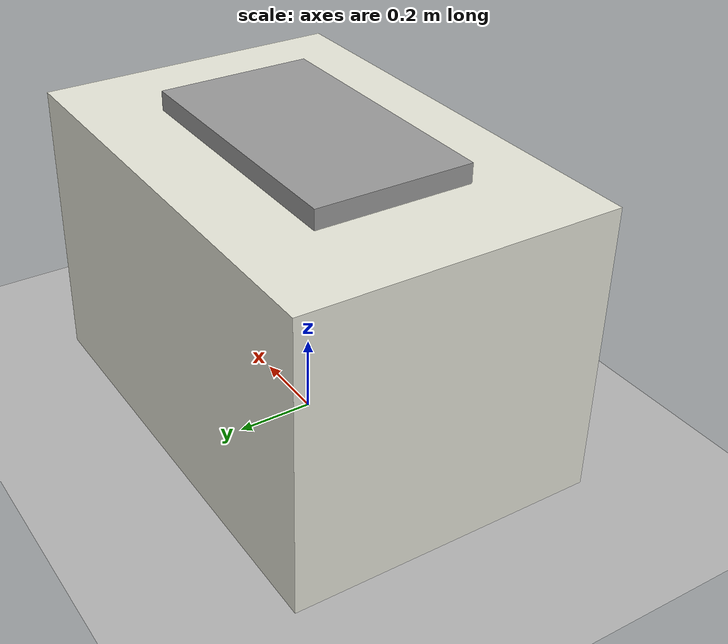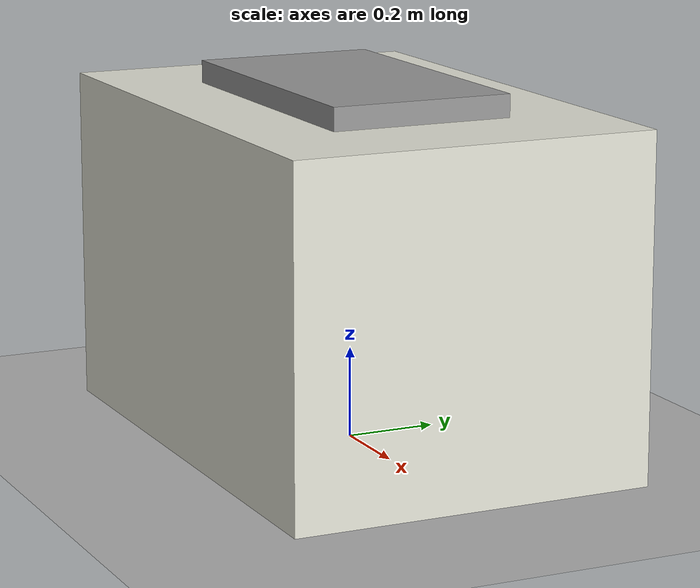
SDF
<?xml version="1.0" ?>
<sdf version="1.8">
  <world name="rebel_lab_world">

    <physics name="1ms" type="ignored">
      <max_step_size>0.001</max_step_size>
      <real_time_factor>1.0</real_time_factor>
    </physics>

    <plugin filename="gz-sim-physics-system" name="gz::sim::systems::Physics"/>
    <plugin filename="gz-sim-user-commands-system" name="gz::sim::systems::UserCommands"/>
    <plugin filename="gz-sim-scene-broadcaster-system" name="gz::sim::systems::SceneBroadcaster"/>

    <light type="directional" name="sun">
      <cast_shadows>true</cast_shadows>
      <pose>0 0 10 0 0 0</pose>
      <diffuse>0.8 0.8 0.8 1</diffuse>
      <specular>0.2 0.2 0.2 1</specular>
      <direction>-0.5 0.1 -0.9</direction>
    </light>

    <model name="ground_plane">
      <static>true</static>
      <link name="link">
        <collision name="collision">
          <geometry>
            <plane>
              <normal>0 0 1</normal>
              <size>100 100</size>
            </plane>
          </geometry>
        </collision>
        <visual name="visual">
          <geometry>
            <plane>
              <normal>0 0 1</normal>
              <size>100 100</size>
            </plane>
          </geometry>
          <material>
            <ambient>0.3 0.3 0.3 1</ambient>
            <diffuse>0.7 0.7 0.7 1</diffuse>
            <specular>0.7 0.7 0.7 1</specular>
          </material>
        </visual>
      </link>
    </model>

    <model name="lab_table">
      <static>true</static>
      <pose>0 0 0.375 0 0 0</pose>
      <link name="table_top">
        <collision name="collision">
          <geometry>
            <box>
              <size>1.2 0.8 0.75</size>
            </box>
          </geometry>
        </collision>
        <visual name="visual">
          <geometry>
            <box>
              <size>1.2 0.8 0.75</size>
            </box>
          </geometry>
          <material>
            <ambient>0.9 0.9 0.85 1</ambient>
            <diffuse>0.9 0.9 0.85 1</diffuse>
          </material>
        </visual>
      </link>
    </model>

    <model name="robot_base_plate">
      <static>true</static>
      <pose>0 0 0.775 0 0 0</pose>
      <link name="plate_link">
        <collision name="collision">
          <geometry>
            <box>
              <size>0.7 0.4 0.05</size>
            </box>
          </geometry>
        </collision>
        <visual name="visual">
          <geometry>
            <box>
              <size>0.7 0.4 0.05</size>
            </box>
          </geometry>
          <material>
            <ambient>0.5 0.5 0.5 1</ambient>
            <diffuse>0.6 0.6 0.6 1</diffuse>
          </material>
        </visual>
      </link>
    </model>

  </world>
</sdf>
